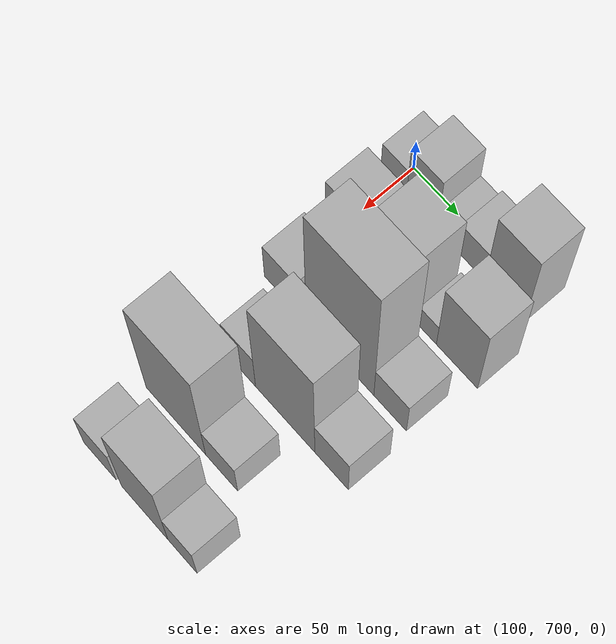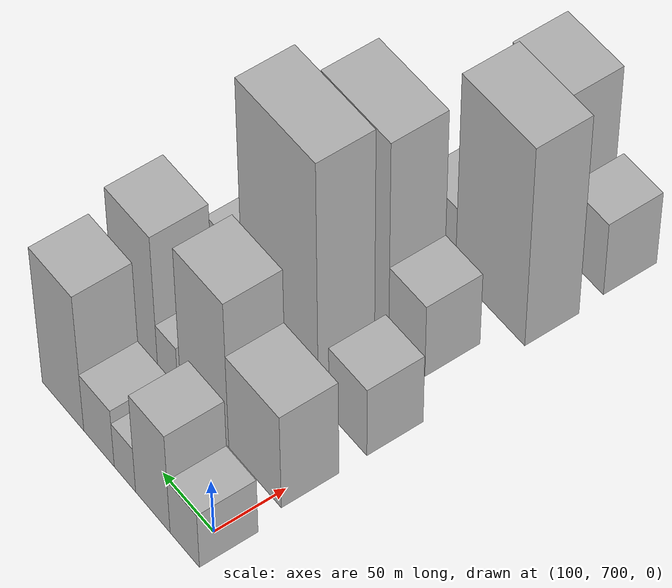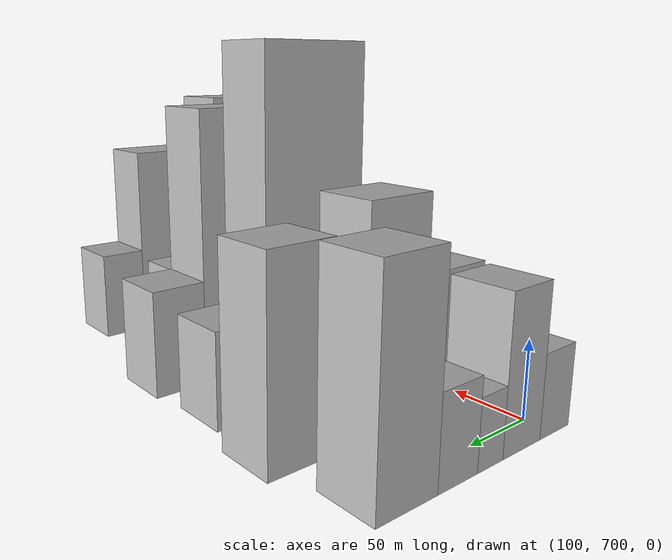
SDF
<sdf version="1.6">
 <world name="default">
  <model name="building_46">
   <static>1</static>
   <pose>100.0000 699.7390 0 0.000000 0.000000 0.000000</pose>
   <link name="link">
    <pose>0 0 25.50 0 0 0</pose>
    <collision name="collision"><geometry><box><size>40.0000 28.7329 51.0000</size></box></geometry></collision>
    <visual name="visual">
     <cast_shadows>0</cast_shadows>
     <geometry><box><size>40.0000 28.7329 51.0000</size></box></geometry>
     <material>
      <script>
       <uri>model://HANNAS_wall/materials/scripts</uri>
       <uri>model://HANNAS_wall/materials/textures</uri>
       <name>vrc/HANNAS_wall</name>
      </script>
     </material>
    </visual>
   </link>
  </model>
  <model name="building_47">
   <static>1</static>
   <pose>100.0000 731.2139 0 0.000000 0.000000 0.000000</pose>
   <link name="link">
    <pose>0 0 46.50 0 0 0</pose>
    <collision name="collision"><geometry><box><size>40.0000 34.2169 93.0000</size></box></geometry></collision>
    <visual name="visual">
     <cast_shadows>0</cast_shadows>
     <geometry><box><size>40.0000 34.2169 93.0000</size></box></geometry>
     <material>
      <script>
       <uri>model://HANNAS_wall/materials/scripts</uri>
       <uri>model://HANNAS_wall/materials/textures</uri>
       <name>vrc/HANNAS_wall</name>
      </script>
     </material>
    </visual>
   </link>
  </model>
  <model name="building_48">
   <static>1</static>
   <pose>100.0000 759.0580 0 0.000000 0.000000 0.000000</pose>
   <link name="link">
    <pose>0 0 21.00 0 0 0</pose>
    <collision name="collision"><geometry><box><size>40.0000 21.4712 42.0000</size></box></geometry></collision>
    <visual name="visual">
     <cast_shadows>0</cast_shadows>
     <geometry><box><size>40.0000 21.4712 42.0000</size></box></geometry>
     <material>
      <script>
       <uri>model://HANNAS_wall/materials/scripts</uri>
       <uri>model://HANNAS_wall/materials/textures</uri>
       <name>vrc/HANNAS_wall</name>
      </script>
     </material>
    </visual>
   </link>
  </model>
  <model name="building_49">
   <static>1</static>
   <pose>100.0000 785.2733 0 0.000000 0.000000 0.000000</pose>
   <link name="link">
    <pose>0 0 27.00 0 0 0</pose>
    <collision name="collision"><geometry><box><size>40.0000 30.9595 54.0000</size></box></geometry></collision>
    <visual name="visual">
     <cast_shadows>0</cast_shadows>
     <geometry><box><size>40.0000 30.9595 54.0000</size></box></geometry>
     <material>
      <script>
       <uri>model://HANNAS_wall/materials/scripts</uri>
       <uri>model://HANNAS_wall/materials/textures</uri>
       <name>vrc/HANNAS_wall</name>
      </script>
     </material>
    </visual>
   </link>
  </model>
  <model name="building_50">
   <static>1</static>
   <pose>100.0000 822.1790 0 0.000000 0.000000 0.000000</pose>
   <link name="link">
    <pose>0 0 63.00 0 0 0</pose>
    <collision name="collision"><geometry><box><size>40.0000 42.8519 126.0000</size></box></geometry></collision>
    <visual name="visual">
     <cast_shadows>0</cast_shadows>
     <geometry><box><size>40.0000 42.8519 126.0000</size></box></geometry>
     <material>
      <script>
       <uri>model://HANNAS_wall/materials/scripts</uri>
       <uri>model://HANNAS_wall/materials/textures</uri>
       <name>vrc/HANNAS_wall</name>
      </script>
     </material>
    </visual>
   </link>
  </model>
  <model name="building_105">
   <static>1</static>
   <pose>160.0000 716.5705 0 0.000000 0.000000 0.000000</pose>
   <link name="link">
    <pose>0 0 43.50 0 0 0</pose>
    <collision name="collision"><geometry><box><size>40.0000 51.3761 87.0000</size></box></geometry></collision>
    <visual name="visual">
     <cast_shadows>0</cast_shadows>
     <geometry><box><size>40.0000 51.3761 87.0000</size></box></geometry>
     <material>
      <script>
       <uri>model://HANNAS_wall/materials/scripts</uri>
       <uri>model://HANNAS_wall/materials/textures</uri>
       <name>vrc/HANNAS_wall</name>
      </script>
     </material>
    </visual>
   </link>
  </model>
  <model name="building_106">
   <static>1</static>
   <pose>160.0000 766.1731 0 0.000000 0.000000 0.000000</pose>
   <link name="link">
    <pose>0 0 67.50 0 0 0</pose>
    <collision name="collision"><geometry><box><size>40.0000 47.8291 135.0000</size></box></geometry></collision>
    <visual name="visual">
     <cast_shadows>0</cast_shadows>
     <geometry><box><size>40.0000 47.8291 135.0000</size></box></geometry>
     <material>
      <script>
       <uri>model://HANNAS_wall/materials/scripts</uri>
       <uri>model://HANNAS_wall/materials/textures</uri>
       <name>vrc/HANNAS_wall</name>
      </script>
     </material>
    </visual>
   </link>
  </model>
  <model name="building_107">
   <static>1</static>
   <pose>160.0000 803.4157 0 0.000000 0.000000 0.000000</pose>
   <link name="link">
    <pose>0 0 19.50 0 0 0</pose>
    <collision name="collision"><geometry><box><size>40.0000 20.6560 39.0000</size></box></geometry></collision>
    <visual name="visual">
     <cast_shadows>0</cast_shadows>
     <geometry><box><size>40.0000 20.6560 39.0000</size></box></geometry>
     <material>
      <script>
       <uri>model://HANNAS_wall/materials/scripts</uri>
       <uri>model://HANNAS_wall/materials/textures</uri>
       <name>vrc/HANNAS_wall</name>
      </script>
     </material>
    </visual>
   </link>
  </model>
  <model name="building_108">
   <static>1</static>
   <pose>160.0000 836.0244 0 0.000000 0.000000 0.000000</pose>
   <link name="link">
    <pose>0 0 60.00 0 0 0</pose>
    <collision name="collision"><geometry><box><size>40.0000 44.5614 120.0000</size></box></geometry></collision>
    <visual name="visual">
     <cast_shadows>0</cast_shadows>
     <geometry><box><size>40.0000 44.5614 120.0000</size></box></geometry>
     <material>
      <script>
       <uri>model://HANNAS_wall/materials/scripts</uri>
       <uri>model://HANNAS_wall/materials/textures</uri>
       <name>vrc/HANNAS_wall</name>
      </script>
     </material>
    </visual>
   </link>
  </model>
  <model name="building_160">
   <static>1</static>
   <pose>220.0000 709.5072 0 0.000000 0.000000 0.000000</pose>
   <link name="link">
    <pose>0 0 31.50 0 0 0</pose>
    <collision name="collision"><geometry><box><size>40.0000 36.4847 63.0000</size></box></geometry></collision>
    <visual name="visual">
     <cast_shadows>0</cast_shadows>
     <geometry><box><size>40.0000 36.4847 63.0000</size></box></geometry>
     <material>
      <script>
       <uri>model://HANNAS_wall/materials/scripts</uri>
       <uri>model://HANNAS_wall/materials/textures</uri>
       <name>vrc/HANNAS_wall</name>
      </script>
     </material>
    </visual>
   </link>
  </model>
  <model name="building_161">
   <static>1</static>
   <pose>220.0000 733.0010 0 0.000000 0.000000 0.000000</pose>
   <link name="link">
    <pose>0 0 12.00 0 0 0</pose>
    <collision name="collision"><geometry><box><size>40.0000 10.5028 24.0000</size></box></geometry></collision>
    <visual name="visual">
     <cast_shadows>0</cast_shadows>
     <geometry><box><size>40.0000 10.5028 24.0000</size></box></geometry>
     <material>
      <script>
       <uri>model://HANNAS_wall/materials/scripts</uri>
       <uri>model://HANNAS_wall/materials/textures</uri>
       <name>vrc/HANNAS_wall</name>
      </script>
     </material>
    </visual>
   </link>
  </model>
  <model name="building_162">
   <static>1</static>
   <pose>220.0000 775.4668 0 0.000000 0.000000 0.000000</pose>
   <link name="link">
    <pose>0 0 108.00 0 0 0</pose>
    <collision name="collision"><geometry><box><size>40.0000 74.4288 216.0000</size></box></geometry></collision>
    <visual name="visual">
     <cast_shadows>0</cast_shadows>
     <geometry><box><size>40.0000 74.4288 216.0000</size></box></geometry>
     <material>
      <script>
       <uri>model://HANNAS_wall/materials/scripts</uri>
       <uri>model://HANNAS_wall/materials/textures</uri>
       <name>vrc/HANNAS_wall</name>
      </script>
     </material>
    </visual>
   </link>
  </model>
  <model name="building_163">
   <static>1</static>
   <pose>220.0000 830.3093 0 0.000000 0.000000 0.000000</pose>
   <link name="link">
    <pose>0 0 30.00 0 0 0</pose>
    <collision name="collision"><geometry><box><size>40.0000 35.2562 60.0000</size></box></geometry></collision>
    <visual name="visual">
     <cast_shadows>0</cast_shadows>
     <geometry><box><size>40.0000 35.2562 60.0000</size></box></geometry>
     <material>
      <script>
       <uri>model://HANNAS_wall/materials/scripts</uri>
       <uri>model://HANNAS_wall/materials/textures</uri>
       <name>vrc/HANNAS_wall</name>
      </script>
     </material>
    </visual>
   </link>
  </model>
  <model name="building_218">
   <static>1</static>
   <pose>280.0000 733.7836 0 0.000000 0.000000 0.000000</pose>
   <link name="link">
    <pose>0 0 33.00 0 0 0</pose>
    <collision name="collision"><geometry><box><size>40.0000 34.9873 66.0000</size></box></geometry></collision>
    <visual name="visual">
     <cast_shadows>0</cast_shadows>
     <geometry><box><size>40.0000 34.9873 66.0000</size></box></geometry>
     <material>
      <script>
       <uri>model://HANNAS_wall/materials/scripts</uri>
       <uri>model://HANNAS_wall/materials/textures</uri>
       <name>vrc/HANNAS_wall</name>
      </script>
     </material>
    </visual>
   </link>
  </model>
  <model name="building_219">
   <static>1</static>
   <pose>280.0000 783.9139 0 0.000000 0.000000 0.000000</pose>
   <link name="link">
    <pose>0 0 88.50 0 0 0</pose>
    <collision name="collision"><geometry><box><size>40.0000 65.2733 177.0000</size></box></geometry></collision>
    <visual name="visual">
     <cast_shadows>0</cast_shadows>
     <geometry><box><size>40.0000 65.2733 177.0000</size></box></geometry>
     <material>
      <script>
       <uri>model://HANNAS_wall/materials/scripts</uri>
       <uri>model://HANNAS_wall/materials/textures</uri>
       <name>vrc/HANNAS_wall</name>
      </script>
     </material>
    </visual>
   </link>
  </model>
  <model name="building_220">
   <static>1</static>
   <pose>280.0000 834.7248 0 0.000000 0.000000 0.000000</pose>
   <link name="link">
    <pose>0 0 34.50 0 0 0</pose>
    <collision name="collision"><geometry><box><size>40.0000 36.3485 69.0000</size></box></geometry></collision>
    <visual name="visual">
     <cast_shadows>0</cast_shadows>
     <geometry><box><size>40.0000 36.3485 69.0000</size></box></geometry>
     <material>
      <script>
       <uri>model://HANNAS_wall/materials/scripts</uri>
       <uri>model://HANNAS_wall/materials/textures</uri>
       <name>vrc/HANNAS_wall</name>
      </script>
     </material>
    </visual>
   </link>
  </model>
  <model name="building_280">
   <static>1</static>
   <pose>340.0000 732.9792 0 0.000000 0.000000 0.000000</pose>
   <link name="link">
    <pose>0 0 90.00 0 0 0</pose>
    <collision name="collision"><geometry><box><size>40.0000 66.6586 180.0000</size></box></geometry></collision>
    <visual name="visual">
     <cast_shadows>0</cast_shadows>
     <geometry><box><size>40.0000 66.6586 180.0000</size></box></geometry>
     <material>
      <script>
       <uri>model://HANNAS_wall/materials/scripts</uri>
       <uri>model://HANNAS_wall/materials/textures</uri>
       <name>vrc/HANNAS_wall</name>
      </script>
     </material>
    </visual>
   </link>
  </model>
  <model name="building_281">
   <static>1</static>
   <pose>340.0000 783.9872 0 0.000000 0.000000 0.000000</pose>
   <link name="link">
    <pose>0 0 30.00 0 0 0</pose>
    <collision name="collision"><geometry><box><size>40.0000 35.3574 60.0000</size></box></geometry></collision>
    <visual name="visual">
     <cast_shadows>0</cast_shadows>
     <geometry><box><size>40.0000 35.3574 60.0000</size></box></geometry>
     <material>
      <script>
       <uri>model://HANNAS_wall/materials/scripts</uri>
       <uri>model://HANNAS_wall/materials/textures</uri>
       <name>vrc/HANNAS_wall</name>
      </script>
     </material>
    </visual>
   </link>
  </model>
  <model name="building_329">
   <static>1</static>
   <pose>400.0000 720.1115 0 0.000000 0.000000 0.000000</pose>
   <link name="link">
    <pose>0 0 33.00 0 0 0</pose>
    <collision name="collision"><geometry><box><size>40.0000 36.4432 66.0000</size></box></geometry></collision>
    <visual name="visual">
     <cast_shadows>0</cast_shadows>
     <geometry><box><size>40.0000 36.4432 66.0000</size></box></geometry>
     <material>
      <script>
       <uri>model://HANNAS_wall/materials/scripts</uri>
       <uri>model://HANNAS_wall/materials/textures</uri>
       <name>vrc/HANNAS_wall</name>
      </script>
     </material>
    </visual>
   </link>
  </model>
  <model name="building_330">
   <static>1</static>
   <pose>400.0000 770.1992 0 0.000000 0.000000 0.000000</pose>
   <link name="link">
    <pose>0 0 69.00 0 0 0</pose>
    <collision name="collision"><geometry><box><size>40.0000 51.7323 138.0000</size></box></geometry></collision>
    <visual name="visual">
     <cast_shadows>0</cast_shadows>
     <geometry><box><size>40.0000 51.7323 138.0000</size></box></geometry>
     <material>
      <script>
       <uri>model://HANNAS_wall/materials/scripts</uri>
       <uri>model://HANNAS_wall/materials/textures</uri>
       <name>vrc/HANNAS_wall</name>
      </script>
     </material>
    </visual>
   </link>
  </model>
  <model name="building_331">
   <static>1</static>
   <pose>400.0000 812.0207 0 0.000000 0.000000 0.000000</pose>
   <link name="link">
    <pose>0 0 31.50 0 0 0</pose>
    <collision name="collision"><geometry><box><size>40.0000 31.9107 63.0000</size></box></geometry></collision>
    <visual name="visual">
     <cast_shadows>0</cast_shadows>
     <geometry><box><size>40.0000 31.9107 63.0000</size></box></geometry>
     <material>
      <script>
       <uri>model://HANNAS_wall/materials/scripts</uri>
       <uri>model://HANNAS_wall/materials/textures</uri>
       <name>vrc/HANNAS_wall</name>
      </script>
     </material>
    </visual>
   </link>
  </model>
 </world>
</sdf>
